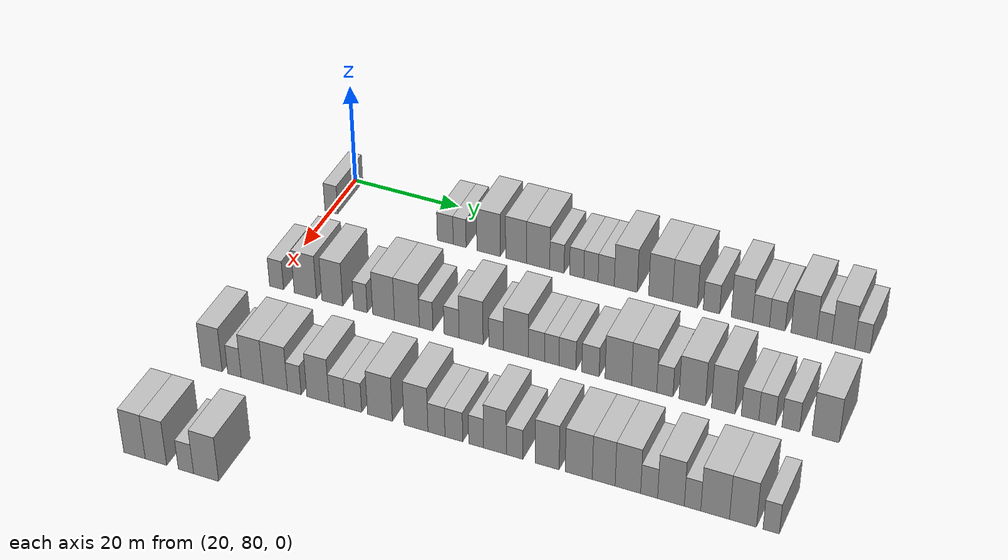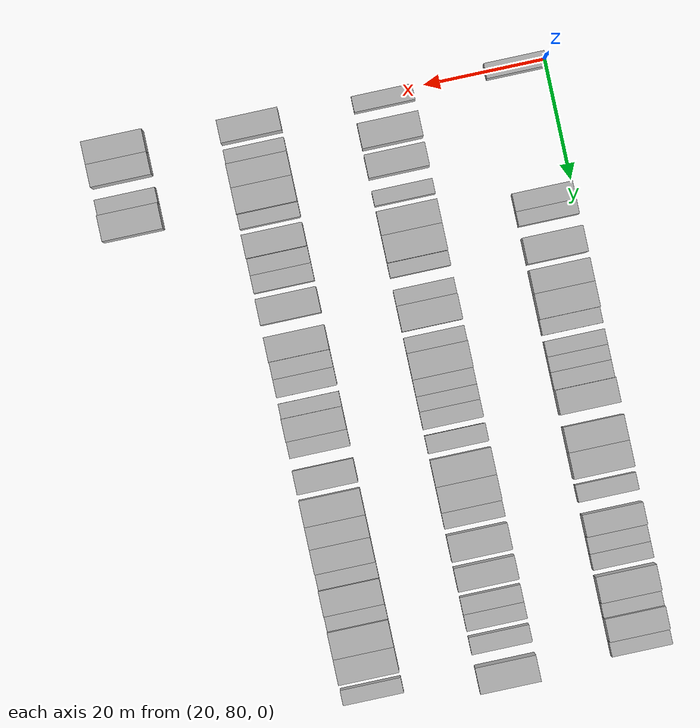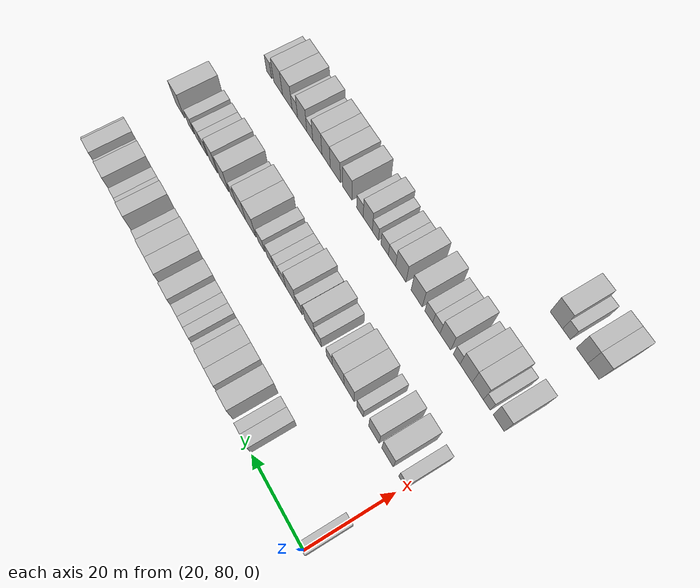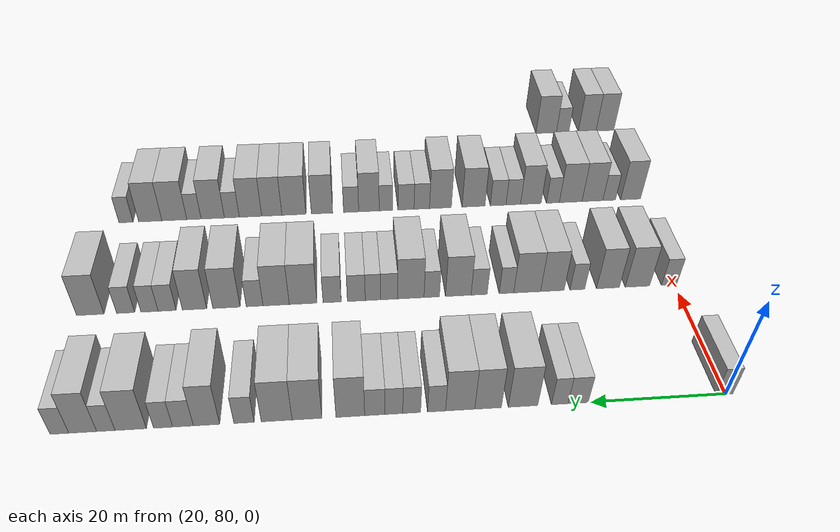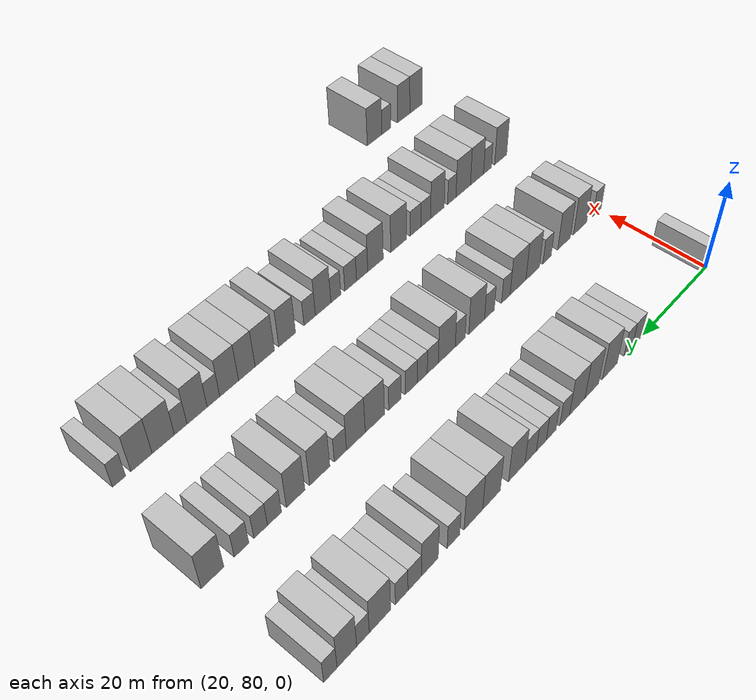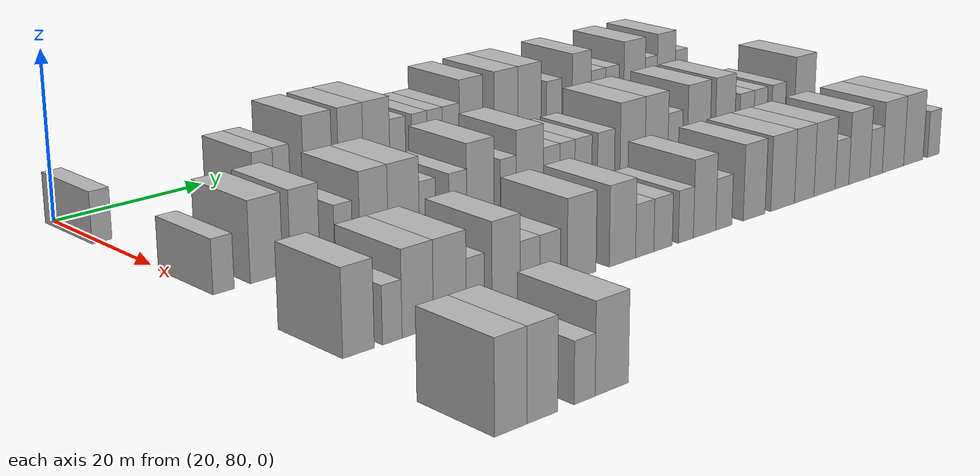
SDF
<sdf version="1.6">
 <world name="default">
  <model name="building_125">
   <static>1</static>
   <pose>25.0000 80.1747 0 0.000000 0.000000 0.000000</pose>
   <link name="link">
    <pose>0 0 3.00 0 0 0</pose>
    <collision name="collision"><geometry><box><size>10.0000 2.5065 6.0000</size></box></geometry></collision>
    <visual name="visual">
     <cast_shadows>0</cast_shadows>
     <geometry><box><size>10.0000 2.5065 6.0000</size></box></geometry>
     <material>
      <script>
       <uri>model://HANNAS_wall/materials/scripts</uri>
       <uri>model://HANNAS_wall/materials/textures</uri>
       <name>vrc/HANNAS_wall</name>
      </script>
     </material>
    </visual>
   </link>
  </model>
  <model name="building_126">
   <static>1</static>
   <pose>25.0000 101.8962 0 0.000000 0.000000 0.000000</pose>
   <link name="link">
    <pose>0 0 3.00 0 0 0</pose>
    <collision name="collision"><geometry><box><size>10.0000 2.9789 6.0000</size></box></geometry></collision>
    <visual name="visual">
     <cast_shadows>0</cast_shadows>
     <geometry><box><size>10.0000 2.9789 6.0000</size></box></geometry>
     <material>
      <script>
       <uri>model://HANNAS_wall/materials/scripts</uri>
       <uri>model://HANNAS_wall/materials/textures</uri>
       <name>vrc/HANNAS_wall</name>
      </script>
     </material>
    </visual>
   </link>
  </model>
  <model name="building_127">
   <static>1</static>
   <pose>25.0000 104.5891 0 0.000000 0.000000 0.000000</pose>
   <link name="link">
    <pose>0 0 3.00 0 0 0</pose>
    <collision name="collision"><geometry><box><size>10.0000 2.4070 6.0000</size></box></geometry></collision>
    <visual name="visual">
     <cast_shadows>0</cast_shadows>
     <geometry><box><size>10.0000 2.4070 6.0000</size></box></geometry>
     <material>
      <script>
       <uri>model://HANNAS_wall/materials/scripts</uri>
       <uri>model://HANNAS_wall/materials/textures</uri>
       <name>vrc/HANNAS_wall</name>
      </script>
     </material>
    </visual>
   </link>
  </model>
  <model name="building_128">
   <static>1</static>
   <pose>25.0000 109.9452 0 0.000000 0.000000 0.000000</pose>
   <link name="link">
    <pose>0 0 4.50 0 0 0</pose>
    <collision name="collision"><geometry><box><size>10.0000 4.3052 9.0000</size></box></geometry></collision>
    <visual name="visual">
     <cast_shadows>0</cast_shadows>
     <geometry><box><size>10.0000 4.3052 9.0000</size></box></geometry>
     <material>
      <script>
       <uri>model://HANNAS_wall/materials/scripts</uri>
       <uri>model://HANNAS_wall/materials/textures</uri>
       <name>vrc/HANNAS_wall</name>
      </script>
     </material>
    </visual>
   </link>
  </model>
  <model name="building_129">
   <static>1</static>
   <pose>25.0000 115.0255 0 0.000000 0.000000 0.000000</pose>
   <link name="link">
    <pose>0 0 4.50 0 0 0</pose>
    <collision name="collision"><geometry><box><size>10.0000 3.8554 9.0000</size></box></geometry></collision>
    <visual name="visual">
     <cast_shadows>0</cast_shadows>
     <geometry><box><size>10.0000 3.8554 9.0000</size></box></geometry>
     <material>
      <script>
       <uri>model://HANNAS_wall/materials/scripts</uri>
       <uri>model://HANNAS_wall/materials/textures</uri>
       <name>vrc/HANNAS_wall</name>
      </script>
     </material>
    </visual>
   </link>
  </model>
  <model name="building_130">
   <static>1</static>
   <pose>25.0000 119.0610 0 0.000000 0.000000 0.000000</pose>
   <link name="link">
    <pose>0 0 4.50 0 0 0</pose>
    <collision name="collision"><geometry><box><size>10.0000 4.2156 9.0000</size></box></geometry></collision>
    <visual name="visual">
     <cast_shadows>0</cast_shadows>
     <geometry><box><size>10.0000 4.2156 9.0000</size></box></geometry>
     <material>
      <script>
       <uri>model://HANNAS_wall/materials/scripts</uri>
       <uri>model://HANNAS_wall/materials/textures</uri>
       <name>vrc/HANNAS_wall</name>
      </script>
     </material>
    </visual>
   </link>
  </model>
  <model name="building_131">
   <static>1</static>
   <pose>25.0000 122.4659 0 0.000000 0.000000 0.000000</pose>
   <link name="link">
    <pose>0 0 3.00 0 0 0</pose>
    <collision name="collision"><geometry><box><size>10.0000 2.5942 6.0000</size></box></geometry></collision>
    <visual name="visual">
     <cast_shadows>0</cast_shadows>
     <geometry><box><size>10.0000 2.5942 6.0000</size></box></geometry>
     <material>
      <script>
       <uri>model://HANNAS_wall/materials/scripts</uri>
       <uri>model://HANNAS_wall/materials/textures</uri>
       <name>vrc/HANNAS_wall</name>
      </script>
     </material>
    </visual>
   </link>
  </model>
  <model name="building_132">
   <static>1</static>
   <pose>25.0000 126.0441 0 0.000000 0.000000 0.000000</pose>
   <link name="link">
    <pose>0 0 3.00 0 0 0</pose>
    <collision name="collision"><geometry><box><size>10.0000 2.5623 6.0000</size></box></geometry></collision>
    <visual name="visual">
     <cast_shadows>0</cast_shadows>
     <geometry><box><size>10.0000 2.5623 6.0000</size></box></geometry>
     <material>
      <script>
       <uri>model://HANNAS_wall/materials/scripts</uri>
       <uri>model://HANNAS_wall/materials/textures</uri>
       <name>vrc/HANNAS_wall</name>
      </script>
     </material>
    </visual>
   </link>
  </model>
  <model name="building_133">
   <static>1</static>
   <pose>25.0000 128.5996 0 0.000000 0.000000 0.000000</pose>
   <link name="link">
    <pose>0 0 3.00 0 0 0</pose>
    <collision name="collision"><geometry><box><size>10.0000 2.5489 6.0000</size></box></geometry></collision>
    <visual name="visual">
     <cast_shadows>0</cast_shadows>
     <geometry><box><size>10.0000 2.5489 6.0000</size></box></geometry>
     <material>
      <script>
       <uri>model://HANNAS_wall/materials/scripts</uri>
       <uri>model://HANNAS_wall/materials/textures</uri>
       <name>vrc/HANNAS_wall</name>
      </script>
     </material>
    </visual>
   </link>
  </model>
  <model name="building_134">
   <static>1</static>
   <pose>25.0000 131.3247 0 0.000000 0.000000 0.000000</pose>
   <link name="link">
    <pose>0 0 3.00 0 0 0</pose>
    <collision name="collision"><geometry><box><size>10.0000 2.9014 6.0000</size></box></geometry></collision>
    <visual name="visual">
     <cast_shadows>0</cast_shadows>
     <geometry><box><size>10.0000 2.9014 6.0000</size></box></geometry>
     <material>
      <script>
       <uri>model://HANNAS_wall/materials/scripts</uri>
       <uri>model://HANNAS_wall/materials/textures</uri>
       <name>vrc/HANNAS_wall</name>
      </script>
     </material>
    </visual>
   </link>
  </model>
  <model name="building_135">
   <static>1</static>
   <pose>25.0000 134.8172 0 0.000000 0.000000 0.000000</pose>
   <link name="link">
    <pose>0 0 4.50 0 0 0</pose>
    <collision name="collision"><geometry><box><size>10.0000 4.0836 9.0000</size></box></geometry></collision>
    <visual name="visual">
     <cast_shadows>0</cast_shadows>
     <geometry><box><size>10.0000 4.0836 9.0000</size></box></geometry>
     <material>
      <script>
       <uri>model://HANNAS_wall/materials/scripts</uri>
       <uri>model://HANNAS_wall/materials/textures</uri>
       <name>vrc/HANNAS_wall</name>
      </script>
     </material>
    </visual>
   </link>
  </model>
  <model name="building_136">
   <static>1</static>
   <pose>25.0000 140.9706 0 0.000000 0.000000 0.000000</pose>
   <link name="link">
    <pose>0 0 4.50 0 0 0</pose>
    <collision name="collision"><geometry><box><size>10.0000 4.2232 9.0000</size></box></geometry></collision>
    <visual name="visual">
     <cast_shadows>0</cast_shadows>
     <geometry><box><size>10.0000 4.2232 9.0000</size></box></geometry>
     <material>
      <script>
       <uri>model://HANNAS_wall/materials/scripts</uri>
       <uri>model://HANNAS_wall/materials/textures</uri>
       <name>vrc/HANNAS_wall</name>
      </script>
     </material>
    </visual>
   </link>
  </model>
  <model name="building_137">
   <static>1</static>
   <pose>25.0000 145.2514 0 0.000000 0.000000 0.000000</pose>
   <link name="link">
    <pose>0 0 4.50 0 0 0</pose>
    <collision name="collision"><geometry><box><size>10.0000 4.3384 9.0000</size></box></geometry></collision>
    <visual name="visual">
     <cast_shadows>0</cast_shadows>
     <geometry><box><size>10.0000 4.3384 9.0000</size></box></geometry>
     <material>
      <script>
       <uri>model://HANNAS_wall/materials/scripts</uri>
       <uri>model://HANNAS_wall/materials/textures</uri>
       <name>vrc/HANNAS_wall</name>
      </script>
     </material>
    </visual>
   </link>
  </model>
  <model name="building_138">
   <static>1</static>
   <pose>25.0000 149.8433 0 0.000000 0.000000 0.000000</pose>
   <link name="link">
    <pose>0 0 3.00 0 0 0</pose>
    <collision name="collision"><geometry><box><size>10.0000 2.8454 6.0000</size></box></geometry></collision>
    <visual name="visual">
     <cast_shadows>0</cast_shadows>
     <geometry><box><size>10.0000 2.8454 6.0000</size></box></geometry>
     <material>
      <script>
       <uri>model://HANNAS_wall/materials/scripts</uri>
       <uri>model://HANNAS_wall/materials/textures</uri>
       <name>vrc/HANNAS_wall</name>
      </script>
     </material>
    </visual>
   </link>
  </model>
  <model name="building_139">
   <static>1</static>
   <pose>25.0000 155.1017 0 0.000000 0.000000 0.000000</pose>
   <link name="link">
    <pose>0 0 4.50 0 0 0</pose>
    <collision name="collision"><geometry><box><size>10.0000 3.6713 9.0000</size></box></geometry></collision>
    <visual name="visual">
     <cast_shadows>0</cast_shadows>
     <geometry><box><size>10.0000 3.6713 9.0000</size></box></geometry>
     <material>
      <script>
       <uri>model://HANNAS_wall/materials/scripts</uri>
       <uri>model://HANNAS_wall/materials/textures</uri>
       <name>vrc/HANNAS_wall</name>
      </script>
     </material>
    </visual>
   </link>
  </model>
  <model name="building_140">
   <static>1</static>
   <pose>25.0000 158.3784 0 0.000000 0.000000 0.000000</pose>
   <link name="link">
    <pose>0 0 3.00 0 0 0</pose>
    <collision name="collision"><geometry><box><size>10.0000 2.8821 6.0000</size></box></geometry></collision>
    <visual name="visual">
     <cast_shadows>0</cast_shadows>
     <geometry><box><size>10.0000 2.8821 6.0000</size></box></geometry>
     <material>
      <script>
       <uri>model://HANNAS_wall/materials/scripts</uri>
       <uri>model://HANNAS_wall/materials/textures</uri>
       <name>vrc/HANNAS_wall</name>
      </script>
     </material>
    </visual>
   </link>
  </model>
  <model name="building_141">
   <static>1</static>
   <pose>25.0000 161.1479 0 0.000000 0.000000 0.000000</pose>
   <link name="link">
    <pose>0 0 3.00 0 0 0</pose>
    <collision name="collision"><geometry><box><size>10.0000 2.6570 6.0000</size></box></geometry></collision>
    <visual name="visual">
     <cast_shadows>0</cast_shadows>
     <geometry><box><size>10.0000 2.6570 6.0000</size></box></geometry>
     <material>
      <script>
       <uri>model://HANNAS_wall/materials/scripts</uri>
       <uri>model://HANNAS_wall/materials/textures</uri>
       <name>vrc/HANNAS_wall</name>
      </script>
     </material>
    </visual>
   </link>
  </model>
  <model name="building_142">
   <static>1</static>
   <pose>25.0000 165.6485 0 0.000000 0.000000 0.000000</pose>
   <link name="link">
    <pose>0 0 4.50 0 0 0</pose>
    <collision name="collision"><geometry><box><size>10.0000 4.3441 9.0000</size></box></geometry></collision>
    <visual name="visual">
     <cast_shadows>0</cast_shadows>
     <geometry><box><size>10.0000 4.3441 9.0000</size></box></geometry>
     <material>
      <script>
       <uri>model://HANNAS_wall/materials/scripts</uri>
       <uri>model://HANNAS_wall/materials/textures</uri>
       <name>vrc/HANNAS_wall</name>
      </script>
     </material>
    </visual>
   </link>
  </model>
  <model name="building_143">
   <static>1</static>
   <pose>25.0000 169.0871 0 0.000000 0.000000 0.000000</pose>
   <link name="link">
    <pose>0 0 3.00 0 0 0</pose>
    <collision name="collision"><geometry><box><size>10.0000 2.5333 6.0000</size></box></geometry></collision>
    <visual name="visual">
     <cast_shadows>0</cast_shadows>
     <geometry><box><size>10.0000 2.5333 6.0000</size></box></geometry>
     <material>
      <script>
       <uri>model://HANNAS_wall/materials/scripts</uri>
       <uri>model://HANNAS_wall/materials/textures</uri>
       <name>vrc/HANNAS_wall</name>
      </script>
     </material>
    </visual>
   </link>
  </model>
  <model name="building_144">
   <static>1</static>
   <pose>25.0000 172.2663 0 0.000000 0.000000 0.000000</pose>
   <link name="link">
    <pose>0 0 4.50 0 0 0</pose>
    <collision name="collision"><geometry><box><size>10.0000 3.8250 9.0000</size></box></geometry></collision>
    <visual name="visual">
     <cast_shadows>0</cast_shadows>
     <geometry><box><size>10.0000 3.8250 9.0000</size></box></geometry>
     <material>
      <script>
       <uri>model://HANNAS_wall/materials/scripts</uri>
       <uri>model://HANNAS_wall/materials/textures</uri>
       <name>vrc/HANNAS_wall</name>
      </script>
     </material>
    </visual>
   </link>
  </model>
  <model name="building_145">
   <static>1</static>
   <pose>25.0000 175.4601 0 0.000000 0.000000 0.000000</pose>
   <link name="link">
    <pose>0 0 3.00 0 0 0</pose>
    <collision name="collision"><geometry><box><size>10.0000 2.5627 6.0000</size></box></geometry></collision>
    <visual name="visual">
     <cast_shadows>0</cast_shadows>
     <geometry><box><size>10.0000 2.5627 6.0000</size></box></geometry>
     <material>
      <script>
       <uri>model://HANNAS_wall/materials/scripts</uri>
       <uri>model://HANNAS_wall/materials/textures</uri>
       <name>vrc/HANNAS_wall</name>
      </script>
     </material>
    </visual>
   </link>
  </model>
  <model name="building_313">
   <static>1</static>
   <pose>47.0000 80.9312 0 0.000000 0.000000 0.000000</pose>
   <link name="link">
    <pose>0 0 3.00 0 0 0</pose>
    <collision name="collision"><geometry><box><size>10.0000 2.6071 6.0000</size></box></geometry></collision>
    <visual name="visual">
     <cast_shadows>0</cast_shadows>
     <geometry><box><size>10.0000 2.6071 6.0000</size></box></geometry>
     <material>
      <script>
       <uri>model://HANNAS_wall/materials/scripts</uri>
       <uri>model://HANNAS_wall/materials/textures</uri>
       <name>vrc/HANNAS_wall</name>
      </script>
     </material>
    </visual>
   </link>
  </model>
  <model name="building_314">
   <static>1</static>
   <pose>47.0000 86.3037 0 0.000000 0.000000 0.000000</pose>
   <link name="link">
    <pose>0 0 4.50 0 0 0</pose>
    <collision name="collision"><geometry><box><size>10.0000 4.1380 9.0000</size></box></geometry></collision>
    <visual name="visual">
     <cast_shadows>0</cast_shadows>
     <geometry><box><size>10.0000 4.1380 9.0000</size></box></geometry>
     <material>
      <script>
       <uri>model://HANNAS_wall/materials/scripts</uri>
       <uri>model://HANNAS_wall/materials/textures</uri>
       <name>vrc/HANNAS_wall</name>
      </script>
     </material>
    </visual>
   </link>
  </model>
  <model name="building_315">
   <static>1</static>
   <pose>47.0000 91.2954 0 0.000000 0.000000 0.000000</pose>
   <link name="link">
    <pose>0 0 4.50 0 0 0</pose>
    <collision name="collision"><geometry><box><size>10.0000 3.8453 9.0000</size></box></geometry></collision>
    <visual name="visual">
     <cast_shadows>0</cast_shadows>
     <geometry><box><size>10.0000 3.8453 9.0000</size></box></geometry>
     <material>
      <script>
       <uri>model://HANNAS_wall/materials/scripts</uri>
       <uri>model://HANNAS_wall/materials/textures</uri>
       <name>vrc/HANNAS_wall</name>
      </script>
     </material>
    </visual>
   </link>
  </model>
  <model name="building_316">
   <static>1</static>
   <pose>47.0000 96.4505 0 0.000000 0.000000 0.000000</pose>
   <link name="link">
    <pose>0 0 3.00 0 0 0</pose>
    <collision name="collision"><geometry><box><size>10.0000 2.4650 6.0000</size></box></geometry></collision>
    <visual name="visual">
     <cast_shadows>0</cast_shadows>
     <geometry><box><size>10.0000 2.4650 6.0000</size></box></geometry>
     <material>
      <script>
       <uri>model://HANNAS_wall/materials/scripts</uri>
       <uri>model://HANNAS_wall/materials/textures</uri>
       <name>vrc/HANNAS_wall</name>
      </script>
     </material>
    </visual>
   </link>
  </model>
  <model name="building_317">
   <static>1</static>
   <pose>47.0000 100.6572 0 0.000000 0.000000 0.000000</pose>
   <link name="link">
    <pose>0 0 4.50 0 0 0</pose>
    <collision name="collision"><geometry><box><size>10.0000 3.9483 9.0000</size></box></geometry></collision>
    <visual name="visual">
     <cast_shadows>0</cast_shadows>
     <geometry><box><size>10.0000 3.9483 9.0000</size></box></geometry>
     <material>
      <script>
       <uri>model://HANNAS_wall/materials/scripts</uri>
       <uri>model://HANNAS_wall/materials/textures</uri>
       <name>vrc/HANNAS_wall</name>
      </script>
     </material>
    </visual>
   </link>
  </model>
  <model name="building_318">
   <static>1</static>
   <pose>47.0000 104.8761 0 0.000000 0.000000 0.000000</pose>
   <link name="link">
    <pose>0 0 4.50 0 0 0</pose>
    <collision name="collision"><geometry><box><size>10.0000 4.4896 9.0000</size></box></geometry></collision>
    <visual name="visual">
     <cast_shadows>0</cast_shadows>
     <geometry><box><size>10.0000 4.4896 9.0000</size></box></geometry>
     <material>
      <script>
       <uri>model://HANNAS_wall/materials/scripts</uri>
       <uri>model://HANNAS_wall/materials/textures</uri>
       <name>vrc/HANNAS_wall</name>
      </script>
     </material>
    </visual>
   </link>
  </model>
  <model name="building_319">
   <static>1</static>
   <pose>47.0000 108.3272 0 0.000000 0.000000 0.000000</pose>
   <link name="link">
    <pose>0 0 3.00 0 0 0</pose>
    <collision name="collision"><geometry><box><size>10.0000 2.4125 6.0000</size></box></geometry></collision>
    <visual name="visual">
     <cast_shadows>0</cast_shadows>
     <geometry><box><size>10.0000 2.4125 6.0000</size></box></geometry>
     <material>
      <script>
       <uri>model://HANNAS_wall/materials/scripts</uri>
       <uri>model://HANNAS_wall/materials/textures</uri>
       <name>vrc/HANNAS_wall</name>
      </script>
     </material>
    </visual>
   </link>
  </model>
  <model name="building_320">
   <static>1</static>
   <pose>47.0000 112.8674 0 0.000000 0.000000 0.000000</pose>
   <link name="link">
    <pose>0 0 3.00 0 0 0</pose>
    <collision name="collision"><geometry><box><size>10.0000 2.6679 6.0000</size></box></geometry></collision>
    <visual name="visual">
     <cast_shadows>0</cast_shadows>
     <geometry><box><size>10.0000 2.6679 6.0000</size></box></geometry>
     <material>
      <script>
       <uri>model://HANNAS_wall/materials/scripts</uri>
       <uri>model://HANNAS_wall/materials/textures</uri>
       <name>vrc/HANNAS_wall</name>
      </script>
     </material>
    </visual>
   </link>
  </model>
  <model name="building_321">
   <static>1</static>
   <pose>47.0000 116.3164 0 0.000000 0.000000 0.000000</pose>
   <link name="link">
    <pose>0 0 4.50 0 0 0</pose>
    <collision name="collision"><geometry><box><size>10.0000 4.2300 9.0000</size></box></geometry></collision>
    <visual name="visual">
     <cast_shadows>0</cast_shadows>
     <geometry><box><size>10.0000 4.2300 9.0000</size></box></geometry>
     <material>
      <script>
       <uri>model://HANNAS_wall/materials/scripts</uri>
       <uri>model://HANNAS_wall/materials/textures</uri>
       <name>vrc/HANNAS_wall</name>
      </script>
     </material>
    </visual>
   </link>
  </model>
  <model name="building_322">
   <static>1</static>
   <pose>47.0000 120.7070 0 0.000000 0.000000 0.000000</pose>
   <link name="link">
    <pose>0 0 3.00 0 0 0</pose>
    <collision name="collision"><geometry><box><size>10.0000 2.5512 6.0000</size></box></geometry></collision>
    <visual name="visual">
     <cast_shadows>0</cast_shadows>
     <geometry><box><size>10.0000 2.5512 6.0000</size></box></geometry>
     <material>
      <script>
       <uri>model://HANNAS_wall/materials/scripts</uri>
       <uri>model://HANNAS_wall/materials/textures</uri>
       <name>vrc/HANNAS_wall</name>
      </script>
     </material>
    </visual>
   </link>
  </model>
  <model name="building_323">
   <static>1</static>
   <pose>47.0000 124.1648 0 0.000000 0.000000 0.000000</pose>
   <link name="link">
    <pose>0 0 4.50 0 0 0</pose>
    <collision name="collision"><geometry><box><size>10.0000 4.3644 9.0000</size></box></geometry></collision>
    <visual name="visual">
     <cast_shadows>0</cast_shadows>
     <geometry><box><size>10.0000 4.3644 9.0000</size></box></geometry>
     <material>
      <script>
       <uri>model://HANNAS_wall/materials/scripts</uri>
       <uri>model://HANNAS_wall/materials/textures</uri>
       <name>vrc/HANNAS_wall</name>
      </script>
     </material>
    </visual>
   </link>
  </model>
  <model name="building_324">
   <static>1</static>
   <pose>47.0000 127.7350 0 0.000000 0.000000 0.000000</pose>
   <link name="link">
    <pose>0 0 3.00 0 0 0</pose>
    <collision name="collision"><geometry><box><size>10.0000 2.7759 6.0000</size></box></geometry></collision>
    <visual name="visual">
     <cast_shadows>0</cast_shadows>
     <geometry><box><size>10.0000 2.7759 6.0000</size></box></geometry>
     <material>
      <script>
       <uri>model://HANNAS_wall/materials/scripts</uri>
       <uri>model://HANNAS_wall/materials/textures</uri>
       <name>vrc/HANNAS_wall</name>
      </script>
     </material>
    </visual>
   </link>
  </model>
  <model name="building_325">
   <static>1</static>
   <pose>47.0000 130.3739 0 0.000000 0.000000 0.000000</pose>
   <link name="link">
    <pose>0 0 3.00 0 0 0</pose>
    <collision name="collision"><geometry><box><size>10.0000 2.5020 6.0000</size></box></geometry></collision>
    <visual name="visual">
     <cast_shadows>0</cast_shadows>
     <geometry><box><size>10.0000 2.5020 6.0000</size></box></geometry>
     <material>
      <script>
       <uri>model://HANNAS_wall/materials/scripts</uri>
       <uri>model://HANNAS_wall/materials/textures</uri>
       <name>vrc/HANNAS_wall</name>
      </script>
     </material>
    </visual>
   </link>
  </model>
  <model name="building_326">
   <static>1</static>
   <pose>47.0000 133.0807 0 0.000000 0.000000 0.000000</pose>
   <link name="link">
    <pose>0 0 3.00 0 0 0</pose>
    <collision name="collision"><geometry><box><size>10.0000 2.9116 6.0000</size></box></geometry></collision>
    <visual name="visual">
     <cast_shadows>0</cast_shadows>
     <geometry><box><size>10.0000 2.9116 6.0000</size></box></geometry>
     <material>
      <script>
       <uri>model://HANNAS_wall/materials/scripts</uri>
       <uri>model://HANNAS_wall/materials/textures</uri>
       <name>vrc/HANNAS_wall</name>
      </script>
     </material>
    </visual>
   </link>
  </model>
  <model name="building_327">
   <static>1</static>
   <pose>47.0000 137.0164 0 0.000000 0.000000 0.000000</pose>
   <link name="link">
    <pose>0 0 3.00 0 0 0</pose>
    <collision name="collision"><geometry><box><size>10.0000 2.9597 6.0000</size></box></geometry></collision>
    <visual name="visual">
     <cast_shadows>0</cast_shadows>
     <geometry><box><size>10.0000 2.9597 6.0000</size></box></geometry>
     <material>
      <script>
       <uri>model://HANNAS_wall/materials/scripts</uri>
       <uri>model://HANNAS_wall/materials/textures</uri>
       <name>vrc/HANNAS_wall</name>
      </script>
     </material>
    </visual>
   </link>
  </model>
  <model name="building_328">
   <static>1</static>
   <pose>47.0000 141.7390 0 0.000000 0.000000 0.000000</pose>
   <link name="link">
    <pose>0 0 4.50 0 0 0</pose>
    <collision name="collision"><geometry><box><size>10.0000 4.4856 9.0000</size></box></geometry></collision>
    <visual name="visual">
     <cast_shadows>0</cast_shadows>
     <geometry><box><size>10.0000 4.4856 9.0000</size></box></geometry>
     <material>
      <script>
       <uri>model://HANNAS_wall/materials/scripts</uri>
       <uri>model://HANNAS_wall/materials/textures</uri>
       <name>vrc/HANNAS_wall</name>
      </script>
     </material>
    </visual>
   </link>
  </model>
  <model name="building_329">
   <static>1</static>
   <pose>47.0000 146.0983 0 0.000000 0.000000 0.000000</pose>
   <link name="link">
    <pose>0 0 4.50 0 0 0</pose>
    <collision name="collision"><geometry><box><size>10.0000 4.2330 9.0000</size></box></geometry></collision>
    <visual name="visual">
     <cast_shadows>0</cast_shadows>
     <geometry><box><size>10.0000 4.2330 9.0000</size></box></geometry>
     <material>
      <script>
       <uri>model://HANNAS_wall/materials/scripts</uri>
       <uri>model://HANNAS_wall/materials/textures</uri>
       <name>vrc/HANNAS_wall</name>
      </script>
     </material>
    </visual>
   </link>
  </model>
  <model name="building_330">
   <static>1</static>
   <pose>47.0000 149.5685 0 0.000000 0.000000 0.000000</pose>
   <link name="link">
    <pose>0 0 3.00 0 0 0</pose>
    <collision name="collision"><geometry><box><size>10.0000 2.7073 6.0000</size></box></geometry></collision>
    <visual name="visual">
     <cast_shadows>0</cast_shadows>
     <geometry><box><size>10.0000 2.7073 6.0000</size></box></geometry>
     <material>
      <script>
       <uri>model://HANNAS_wall/materials/scripts</uri>
       <uri>model://HANNAS_wall/materials/textures</uri>
       <name>vrc/HANNAS_wall</name>
      </script>
     </material>
    </visual>
   </link>
  </model>
  <model name="building_331">
   <static>1</static>
   <pose>47.0000 154.1053 0 0.000000 0.000000 0.000000</pose>
   <link name="link">
    <pose>0 0 4.50 0 0 0</pose>
    <collision name="collision"><geometry><box><size>10.0000 4.3663 9.0000</size></box></geometry></collision>
    <visual name="visual">
     <cast_shadows>0</cast_shadows>
     <geometry><box><size>10.0000 4.3663 9.0000</size></box></geometry>
     <material>
      <script>
       <uri>model://HANNAS_wall/materials/scripts</uri>
       <uri>model://HANNAS_wall/materials/textures</uri>
       <name>vrc/HANNAS_wall</name>
      </script>
     </material>
    </visual>
   </link>
  </model>
  <model name="building_332">
   <static>1</static>
   <pose>47.0000 159.2296 0 0.000000 0.000000 0.000000</pose>
   <link name="link">
    <pose>0 0 4.50 0 0 0</pose>
    <collision name="collision"><geometry><box><size>10.0000 3.8824 9.0000</size></box></geometry></collision>
    <visual name="visual">
     <cast_shadows>0</cast_shadows>
     <geometry><box><size>10.0000 3.8824 9.0000</size></box></geometry>
     <material>
      <script>
       <uri>model://HANNAS_wall/materials/scripts</uri>
       <uri>model://HANNAS_wall/materials/textures</uri>
       <name>vrc/HANNAS_wall</name>
      </script>
     </material>
    </visual>
   </link>
  </model>
  <model name="building_333">
   <static>1</static>
   <pose>47.0000 163.6065 0 0.000000 0.000000 0.000000</pose>
   <link name="link">
    <pose>0 0 3.00 0 0 0</pose>
    <collision name="collision"><geometry><box><size>10.0000 2.8714 6.0000</size></box></geometry></collision>
    <visual name="visual">
     <cast_shadows>0</cast_shadows>
     <geometry><box><size>10.0000 2.8714 6.0000</size></box></geometry>
     <material>
      <script>
       <uri>model://HANNAS_wall/materials/scripts</uri>
       <uri>model://HANNAS_wall/materials/textures</uri>
       <name>vrc/HANNAS_wall</name>
      </script>
     </material>
    </visual>
   </link>
  </model>
  <model name="building_334">
   <static>1</static>
   <pose>47.0000 166.4022 0 0.000000 0.000000 0.000000</pose>
   <link name="link">
    <pose>0 0 3.00 0 0 0</pose>
    <collision name="collision"><geometry><box><size>10.0000 2.7199 6.0000</size></box></geometry></collision>
    <visual name="visual">
     <cast_shadows>0</cast_shadows>
     <geometry><box><size>10.0000 2.7199 6.0000</size></box></geometry>
     <material>
      <script>
       <uri>model://HANNAS_wall/materials/scripts</uri>
       <uri>model://HANNAS_wall/materials/textures</uri>
       <name>vrc/HANNAS_wall</name>
      </script>
     </material>
    </visual>
   </link>
  </model>
  <model name="building_335">
   <static>1</static>
   <pose>47.0000 170.1914 0 0.000000 0.000000 0.000000</pose>
   <link name="link">
    <pose>0 0 3.00 0 0 0</pose>
    <collision name="collision"><geometry><box><size>10.0000 2.8585 6.0000</size></box></geometry></collision>
    <visual name="visual">
     <cast_shadows>0</cast_shadows>
     <geometry><box><size>10.0000 2.8585 6.0000</size></box></geometry>
     <material>
      <script>
       <uri>model://HANNAS_wall/materials/scripts</uri>
       <uri>model://HANNAS_wall/materials/textures</uri>
       <name>vrc/HANNAS_wall</name>
      </script>
     </material>
    </visual>
   </link>
  </model>
  <model name="building_336">
   <static>1</static>
   <pose>47.0000 175.7829 0 0.000000 0.000000 0.000000</pose>
   <link name="link">
    <pose>0 0 4.50 0 0 0</pose>
    <collision name="collision"><geometry><box><size>10.0000 4.3246 9.0000</size></box></geometry></collision>
    <visual name="visual">
     <cast_shadows>0</cast_shadows>
     <geometry><box><size>10.0000 4.3246 9.0000</size></box></geometry>
     <material>
      <script>
       <uri>model://HANNAS_wall/materials/scripts</uri>
       <uri>model://HANNAS_wall/materials/textures</uri>
       <name>vrc/HANNAS_wall</name>
      </script>
     </material>
    </visual>
   </link>
  </model>
  <model name="building_497">
   <static>1</static>
   <pose>69.0000 80.7811 0 0.000000 0.000000 0.000000</pose>
   <link name="link">
    <pose>0 0 4.50 0 0 0</pose>
    <collision name="collision"><geometry><box><size>10.0000 3.7757 9.0000</size></box></geometry></collision>
    <visual name="visual">
     <cast_shadows>0</cast_shadows>
     <geometry><box><size>10.0000 3.7757 9.0000</size></box></geometry>
     <material>
      <script>
       <uri>model://HANNAS_wall/materials/scripts</uri>
       <uri>model://HANNAS_wall/materials/textures</uri>
       <name>vrc/HANNAS_wall</name>
      </script>
     </material>
    </visual>
   </link>
  </model>
  <model name="building_498">
   <static>1</static>
   <pose>69.0000 84.8751 0 0.000000 0.000000 0.000000</pose>
   <link name="link">
    <pose>0 0 3.00 0 0 0</pose>
    <collision name="collision"><geometry><box><size>10.0000 2.4123 6.0000</size></box></geometry></collision>
    <visual name="visual">
     <cast_shadows>0</cast_shadows>
     <geometry><box><size>10.0000 2.4123 6.0000</size></box></geometry>
     <material>
      <script>
       <uri>model://HANNAS_wall/materials/scripts</uri>
       <uri>model://HANNAS_wall/materials/textures</uri>
       <name>vrc/HANNAS_wall</name>
      </script>
     </material>
    </visual>
   </link>
  </model>
  <model name="building_499">
   <static>1</static>
   <pose>69.0000 88.0571 0 0.000000 0.000000 0.000000</pose>
   <link name="link">
    <pose>0 0 4.50 0 0 0</pose>
    <collision name="collision"><geometry><box><size>10.0000 3.9518 9.0000</size></box></geometry></collision>
    <visual name="visual">
     <cast_shadows>0</cast_shadows>
     <geometry><box><size>10.0000 3.9518 9.0000</size></box></geometry>
     <material>
      <script>
       <uri>model://HANNAS_wall/materials/scripts</uri>
       <uri>model://HANNAS_wall/materials/textures</uri>
       <name>vrc/HANNAS_wall</name>
      </script>
     </material>
    </visual>
   </link>
  </model>
  <model name="building_500">
   <static>1</static>
   <pose>69.0000 92.1776 0 0.000000 0.000000 0.000000</pose>
   <link name="link">
    <pose>0 0 4.50 0 0 0</pose>
    <collision name="collision"><geometry><box><size>10.0000 4.2891 9.0000</size></box></geometry></collision>
    <visual name="visual">
     <cast_shadows>0</cast_shadows>
     <geometry><box><size>10.0000 4.2891 9.0000</size></box></geometry>
     <material>
      <script>
       <uri>model://HANNAS_wall/materials/scripts</uri>
       <uri>model://HANNAS_wall/materials/textures</uri>
       <name>vrc/HANNAS_wall</name>
      </script>
     </material>
    </visual>
   </link>
  </model>
  <model name="building_501">
   <static>1</static>
   <pose>69.0000 95.5401 0 0.000000 0.000000 0.000000</pose>
   <link name="link">
    <pose>0 0 3.00 0 0 0</pose>
    <collision name="collision"><geometry><box><size>10.0000 2.4361 6.0000</size></box></geometry></collision>
    <visual name="visual">
     <cast_shadows>0</cast_shadows>
     <geometry><box><size>10.0000 2.4361 6.0000</size></box></geometry>
     <material>
      <script>
       <uri>model://HANNAS_wall/materials/scripts</uri>
       <uri>model://HANNAS_wall/materials/textures</uri>
       <name>vrc/HANNAS_wall</name>
      </script>
     </material>
    </visual>
   </link>
  </model>
  <model name="building_502">
   <static>1</static>
   <pose>69.0000 99.6991 0 0.000000 0.000000 0.000000</pose>
   <link name="link">
    <pose>0 0 4.50 0 0 0</pose>
    <collision name="collision"><geometry><box><size>10.0000 3.8817 9.0000</size></box></geometry></collision>
    <visual name="visual">
     <cast_shadows>0</cast_shadows>
     <geometry><box><size>10.0000 3.8817 9.0000</size></box></geometry>
     <material>
      <script>
       <uri>model://HANNAS_wall/materials/scripts</uri>
       <uri>model://HANNAS_wall/materials/textures</uri>
       <name>vrc/HANNAS_wall</name>
      </script>
     </material>
    </visual>
   </link>
  </model>
  <model name="building_503">
   <static>1</static>
   <pose>69.0000 103.0087 0 0.000000 0.000000 0.000000</pose>
   <link name="link">
    <pose>0 0 3.00 0 0 0</pose>
    <collision name="collision"><geometry><box><size>10.0000 2.7375 6.0000</size></box></geometry></collision>
    <visual name="visual">
     <cast_shadows>0</cast_shadows>
     <geometry><box><size>10.0000 2.7375 6.0000</size></box></geometry>
     <material>
      <script>
       <uri>model://HANNAS_wall/materials/scripts</uri>
       <uri>model://HANNAS_wall/materials/textures</uri>
       <name>vrc/HANNAS_wall</name>
      </script>
     </material>
    </visual>
   </link>
  </model>
  <model name="building_504">
   <static>1</static>
   <pose>69.0000 105.8476 0 0.000000 0.000000 0.000000</pose>
   <link name="link">
    <pose>0 0 3.00 0 0 0</pose>
    <collision name="collision"><geometry><box><size>10.0000 2.9404 6.0000</size></box></geometry></collision>
    <visual name="visual">
     <cast_shadows>0</cast_shadows>
     <geometry><box><size>10.0000 2.9404 6.0000</size></box></geometry>
     <material>
      <script>
       <uri>model://HANNAS_wall/materials/scripts</uri>
       <uri>model://HANNAS_wall/materials/textures</uri>
       <name>vrc/HANNAS_wall</name>
      </script>
     </material>
    </visual>
   </link>
  </model>
  <model name="building_505">
   <static>1</static>
   <pose>69.0000 110.4565 0 0.000000 0.000000 0.000000</pose>
   <link name="link">
    <pose>0 0 4.50 0 0 0</pose>
    <collision name="collision"><geometry><box><size>10.0000 4.2774 9.0000</size></box></geometry></collision>
    <visual name="visual">
     <cast_shadows>0</cast_shadows>
     <geometry><box><size>10.0000 4.2774 9.0000</size></box></geometry>
     <material>
      <script>
       <uri>model://HANNAS_wall/materials/scripts</uri>
       <uri>model://HANNAS_wall/materials/textures</uri>
       <name>vrc/HANNAS_wall</name>
      </script>
     </material>
    </visual>
   </link>
  </model>
  <model name="building_506">
   <static>1</static>
   <pose>69.0000 116.6277 0 0.000000 0.000000 0.000000</pose>
   <link name="link">
    <pose>0 0 4.50 0 0 0</pose>
    <collision name="collision"><geometry><box><size>10.0000 4.0651 9.0000</size></box></geometry></collision>
    <visual name="visual">
     <cast_shadows>0</cast_shadows>
     <geometry><box><size>10.0000 4.0651 9.0000</size></box></geometry>
     <material>
      <script>
       <uri>model://HANNAS_wall/materials/scripts</uri>
       <uri>model://HANNAS_wall/materials/textures</uri>
       <name>vrc/HANNAS_wall</name>
      </script>
     </material>
    </visual>
   </link>
  </model>
  <model name="building_507">
   <static>1</static>
   <pose>69.0000 120.0986 0 0.000000 0.000000 0.000000</pose>
   <link name="link">
    <pose>0 0 3.00 0 0 0</pose>
    <collision name="collision"><geometry><box><size>10.0000 2.8766 6.0000</size></box></geometry></collision>
    <visual name="visual">
     <cast_shadows>0</cast_shadows>
     <geometry><box><size>10.0000 2.8766 6.0000</size></box></geometry>
     <material>
      <script>
       <uri>model://HANNAS_wall/materials/scripts</uri>
       <uri>model://HANNAS_wall/materials/textures</uri>
       <name>vrc/HANNAS_wall</name>
      </script>
     </material>
    </visual>
   </link>
  </model>
  <model name="building_508">
   <static>1</static>
   <pose>69.0000 123.0288 0 0.000000 0.000000 0.000000</pose>
   <link name="link">
    <pose>0 0 3.00 0 0 0</pose>
    <collision name="collision"><geometry><box><size>10.0000 2.9838 6.0000</size></box></geometry></collision>
    <visual name="visual">
     <cast_shadows>0</cast_shadows>
     <geometry><box><size>10.0000 2.9838 6.0000</size></box></geometry>
     <material>
      <script>
       <uri>model://HANNAS_wall/materials/scripts</uri>
       <uri>model://HANNAS_wall/materials/textures</uri>
       <name>vrc/HANNAS_wall</name>
      </script>
     </material>
    </visual>
   </link>
  </model>
  <model name="building_509">
   <static>1</static>
   <pose>69.0000 126.7594 0 0.000000 0.000000 0.000000</pose>
   <link name="link">
    <pose>0 0 3.00 0 0 0</pose>
    <collision name="collision"><geometry><box><size>10.0000 2.4773 6.0000</size></box></geometry></collision>
    <visual name="visual">
     <cast_shadows>0</cast_shadows>
     <geometry><box><size>10.0000 2.4773 6.0000</size></box></geometry>
     <material>
      <script>
       <uri>model://HANNAS_wall/materials/scripts</uri>
       <uri>model://HANNAS_wall/materials/textures</uri>
       <name>vrc/HANNAS_wall</name>
      </script>
     </material>
    </visual>
   </link>
  </model>
  <model name="building_510">
   <static>1</static>
   <pose>69.0000 129.8870 0 0.000000 0.000000 0.000000</pose>
   <link name="link">
    <pose>0 0 4.50 0 0 0</pose>
    <collision name="collision"><geometry><box><size>10.0000 3.7780 9.0000</size></box></geometry></collision>
    <visual name="visual">
     <cast_shadows>0</cast_shadows>
     <geometry><box><size>10.0000 3.7780 9.0000</size></box></geometry>
     <material>
      <script>
       <uri>model://HANNAS_wall/materials/scripts</uri>
       <uri>model://HANNAS_wall/materials/textures</uri>
       <name>vrc/HANNAS_wall</name>
      </script>
     </material>
    </visual>
   </link>
  </model>
  <model name="building_511">
   <static>1</static>
   <pose>69.0000 133.1554 0 0.000000 0.000000 0.000000</pose>
   <link name="link">
    <pose>0 0 3.00 0 0 0</pose>
    <collision name="collision"><geometry><box><size>10.0000 2.7588 6.0000</size></box></geometry></collision>
    <visual name="visual">
     <cast_shadows>0</cast_shadows>
     <geometry><box><size>10.0000 2.7588 6.0000</size></box></geometry>
     <material>
      <script>
       <uri>model://HANNAS_wall/materials/scripts</uri>
       <uri>model://HANNAS_wall/materials/textures</uri>
       <name>vrc/HANNAS_wall</name>
      </script>
     </material>
    </visual>
   </link>
  </model>
  <model name="building_512">
   <static>1</static>
   <pose>69.0000 138.4903 0 0.000000 0.000000 0.000000</pose>
   <link name="link">
    <pose>0 0 4.50 0 0 0</pose>
    <collision name="collision"><geometry><box><size>10.0000 3.9111 9.0000</size></box></geometry></collision>
    <visual name="visual">
     <cast_shadows>0</cast_shadows>
     <geometry><box><size>10.0000 3.9111 9.0000</size></box></geometry>
     <material>
      <script>
       <uri>model://HANNAS_wall/materials/scripts</uri>
       <uri>model://HANNAS_wall/materials/textures</uri>
       <name>vrc/HANNAS_wall</name>
      </script>
     </material>
    </visual>
   </link>
  </model>
  <model name="building_513">
   <static>1</static>
   <pose>69.0000 143.6357 0 0.000000 0.000000 0.000000</pose>
   <link name="link">
    <pose>0 0 4.50 0 0 0</pose>
    <collision name="collision"><geometry><box><size>10.0000 4.3797 9.0000</size></box></geometry></collision>
    <visual name="visual">
     <cast_shadows>0</cast_shadows>
     <geometry><box><size>10.0000 4.3797 9.0000</size></box></geometry>
     <material>
      <script>
       <uri>model://HANNAS_wall/materials/scripts</uri>
       <uri>model://HANNAS_wall/materials/textures</uri>
       <name>vrc/HANNAS_wall</name>
      </script>
     </material>
    </visual>
   </link>
  </model>
  <model name="building_514">
   <static>1</static>
   <pose>69.0000 147.6628 0 0.000000 0.000000 0.000000</pose>
   <link name="link">
    <pose>0 0 4.50 0 0 0</pose>
    <collision name="collision"><geometry><box><size>10.0000 3.6744 9.0000</size></box></geometry></collision>
    <visual name="visual">
     <cast_shadows>0</cast_shadows>
     <geometry><box><size>10.0000 3.6744 9.0000</size></box></geometry>
     <material>
      <script>
       <uri>model://HANNAS_wall/materials/scripts</uri>
       <uri>model://HANNAS_wall/materials/textures</uri>
       <name>vrc/HANNAS_wall</name>
      </script>
     </material>
    </visual>
   </link>
  </model>
  <model name="building_515">
   <static>1</static>
   <pose>69.0000 151.5393 0 0.000000 0.000000 0.000000</pose>
   <link name="link">
    <pose>0 0 4.50 0 0 0</pose>
    <collision name="collision"><geometry><box><size>10.0000 4.0787 9.0000</size></box></geometry></collision>
    <visual name="visual">
     <cast_shadows>0</cast_shadows>
     <geometry><box><size>10.0000 4.0787 9.0000</size></box></geometry>
     <material>
      <script>
       <uri>model://HANNAS_wall/materials/scripts</uri>
       <uri>model://HANNAS_wall/materials/textures</uri>
       <name>vrc/HANNAS_wall</name>
      </script>
     </material>
    </visual>
   </link>
  </model>
  <model name="building_516">
   <static>1</static>
   <pose>69.0000 154.9248 0 0.000000 0.000000 0.000000</pose>
   <link name="link">
    <pose>0 0 3.00 0 0 0</pose>
    <collision name="collision"><geometry><box><size>10.0000 2.6922 6.0000</size></box></geometry></collision>
    <visual name="visual">
     <cast_shadows>0</cast_shadows>
     <geometry><box><size>10.0000 2.6922 6.0000</size></box></geometry>
     <material>
      <script>
       <uri>model://HANNAS_wall/materials/scripts</uri>
       <uri>model://HANNAS_wall/materials/textures</uri>
       <name>vrc/HANNAS_wall</name>
      </script>
     </material>
    </visual>
   </link>
  </model>
  <model name="building_517">
   <static>1</static>
   <pose>69.0000 158.3766 0 0.000000 0.000000 0.000000</pose>
   <link name="link">
    <pose>0 0 4.50 0 0 0</pose>
    <collision name="collision"><geometry><box><size>10.0000 4.2114 9.0000</size></box></geometry></collision>
    <visual name="visual">
     <cast_shadows>0</cast_shadows>
     <geometry><box><size>10.0000 4.2114 9.0000</size></box></geometry>
     <material>
      <script>
       <uri>model://HANNAS_wall/materials/scripts</uri>
       <uri>model://HANNAS_wall/materials/textures</uri>
       <name>vrc/HANNAS_wall</name>
      </script>
     </material>
    </visual>
   </link>
  </model>
  <model name="building_518">
   <static>1</static>
   <pose>69.0000 161.7707 0 0.000000 0.000000 0.000000</pose>
   <link name="link">
    <pose>0 0 3.00 0 0 0</pose>
    <collision name="collision"><geometry><box><size>10.0000 2.5770 6.0000</size></box></geometry></collision>
    <visual name="visual">
     <cast_shadows>0</cast_shadows>
     <geometry><box><size>10.0000 2.5770 6.0000</size></box></geometry>
     <material>
      <script>
       <uri>model://HANNAS_wall/materials/scripts</uri>
       <uri>model://HANNAS_wall/materials/textures</uri>
       <name>vrc/HANNAS_wall</name>
      </script>
     </material>
    </visual>
   </link>
  </model>
  <model name="building_519">
   <static>1</static>
   <pose>69.0000 165.3002 0 0.000000 0.000000 0.000000</pose>
   <link name="link">
    <pose>0 0 4.50 0 0 0</pose>
    <collision name="collision"><geometry><box><size>10.0000 4.4819 9.0000</size></box></geometry></collision>
    <visual name="visual">
     <cast_shadows>0</cast_shadows>
     <geometry><box><size>10.0000 4.4819 9.0000</size></box></geometry>
     <material>
      <script>
       <uri>model://HANNAS_wall/materials/scripts</uri>
       <uri>model://HANNAS_wall/materials/textures</uri>
       <name>vrc/HANNAS_wall</name>
      </script>
     </material>
    </visual>
   </link>
  </model>
  <model name="building_520">
   <static>1</static>
   <pose>69.0000 169.6269 0 0.000000 0.000000 0.000000</pose>
   <link name="link">
    <pose>0 0 4.50 0 0 0</pose>
    <collision name="collision"><geometry><box><size>10.0000 4.1714 9.0000</size></box></geometry></collision>
    <visual name="visual">
     <cast_shadows>0</cast_shadows>
     <geometry><box><size>10.0000 4.1714 9.0000</size></box></geometry>
     <material>
      <script>
       <uri>model://HANNAS_wall/materials/scripts</uri>
       <uri>model://HANNAS_wall/materials/textures</uri>
       <name>vrc/HANNAS_wall</name>
      </script>
     </material>
    </visual>
   </link>
  </model>
  <model name="building_521">
   <static>1</static>
   <pose>69.0000 173.9682 0 0.000000 0.000000 0.000000</pose>
   <link name="link">
    <pose>0 0 3.00 0 0 0</pose>
    <collision name="collision"><geometry><box><size>10.0000 2.5112 6.0000</size></box></geometry></collision>
    <visual name="visual">
     <cast_shadows>0</cast_shadows>
     <geometry><box><size>10.0000 2.5112 6.0000</size></box></geometry>
     <material>
      <script>
       <uri>model://HANNAS_wall/materials/scripts</uri>
       <uri>model://HANNAS_wall/materials/textures</uri>
       <name>vrc/HANNAS_wall</name>
      </script>
     </material>
    </visual>
   </link>
  </model>
  <model name="building_680">
   <static>1</static>
   <pose>91.0000 79.5451 0 0.000000 0.000000 0.000000</pose>
   <link name="link">
    <pose>0 0 4.50 0 0 0</pose>
    <collision name="collision"><geometry><box><size>10.0000 3.7533 9.0000</size></box></geometry></collision>
    <visual name="visual">
     <cast_shadows>0</cast_shadows>
     <geometry><box><size>10.0000 3.7533 9.0000</size></box></geometry>
     <material>
      <script>
       <uri>model://HANNAS_wall/materials/scripts</uri>
       <uri>model://HANNAS_wall/materials/textures</uri>
       <name>vrc/HANNAS_wall</name>
      </script>
     </material>
    </visual>
   </link>
  </model>
  <model name="building_681">
   <static>1</static>
   <pose>91.0000 83.2886 0 0.000000 0.000000 0.000000</pose>
   <link name="link">
    <pose>0 0 4.50 0 0 0</pose>
    <collision name="collision"><geometry><box><size>10.0000 3.7337 9.0000</size></box></geometry></collision>
    <visual name="visual">
     <cast_shadows>0</cast_shadows>
     <geometry><box><size>10.0000 3.7337 9.0000</size></box></geometry>
     <material>
      <script>
       <uri>model://HANNAS_wall/materials/scripts</uri>
       <uri>model://HANNAS_wall/materials/textures</uri>
       <name>vrc/HANNAS_wall</name>
      </script>
     </material>
    </visual>
   </link>
  </model>
  <model name="building_682">
   <static>1</static>
   <pose>91.0000 88.4736 0 0.000000 0.000000 0.000000</pose>
   <link name="link">
    <pose>0 0 3.00 0 0 0</pose>
    <collision name="collision"><geometry><box><size>10.0000 2.6362 6.0000</size></box></geometry></collision>
    <visual name="visual">
     <cast_shadows>0</cast_shadows>
     <geometry><box><size>10.0000 2.6362 6.0000</size></box></geometry>
     <material>
      <script>
       <uri>model://HANNAS_wall/materials/scripts</uri>
       <uri>model://HANNAS_wall/materials/textures</uri>
       <name>vrc/HANNAS_wall</name>
      </script>
     </material>
    </visual>
   </link>
  </model>
  <model name="building_683">
   <static>1</static>
   <pose>91.0000 91.9335 0 0.000000 0.000000 0.000000</pose>
   <link name="link">
    <pose>0 0 4.50 0 0 0</pose>
    <collision name="collision"><geometry><box><size>10.0000 4.2836 9.0000</size></box></geometry></collision>
    <visual name="visual">
     <cast_shadows>0</cast_shadows>
     <geometry><box><size>10.0000 4.2836 9.0000</size></box></geometry>
     <material>
      <script>
       <uri>model://HANNAS_wall/materials/scripts</uri>
       <uri>model://HANNAS_wall/materials/textures</uri>
       <name>vrc/HANNAS_wall</name>
      </script>
     </material>
    </visual>
   </link>
  </model>
 </world>
</sdf>
